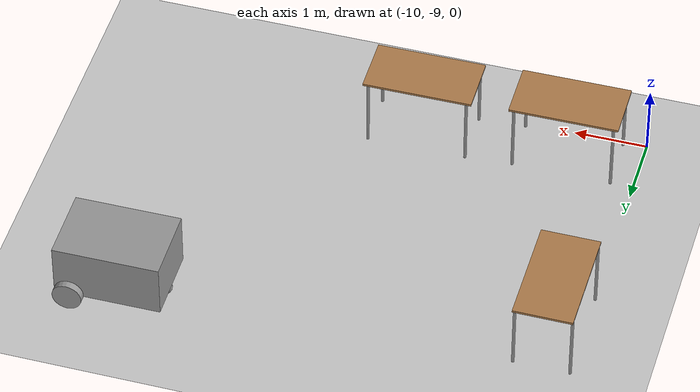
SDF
<sdf version="1.6">
 <world name="default">
  <model name="ground_plane">
   <static>1</static>
   <link name="link">
    <collision name="collision">
     <geometry><plane><normal>0 0 1</normal><size>100 100</size></plane></geometry>
     <surface>
      <contact><collide_bitmask>65535</collide_bitmask></contact>
      <friction><ode><mu>100</mu><mu2>50</mu2></ode></friction>
     </surface>
    </collision>
    <visual name="visual">
     <cast_shadows>0</cast_shadows>
     <geometry><plane><normal>0 0 1</normal><size>100 100</size></plane></geometry>
     <material>
      <script><uri>file://media/materials/scripts/gazebo.material</uri><name>Gazebo/Grey</name></script>
     </material>
    </visual>
   </link>
  </model>
  <model name="robot">
   <link name="link_5">
    <pose>-0.10582 0.004999 0.2875 0 -0 0</pose>
    <inertial>
     <mass>1.09116</mass>
     <inertia>
      <ixx>0.142667</ixx>
      <ixy>0</ixy>
      <ixz>0</ixz>
      <iyy>0.242013</iyy>
      <iyz>0</iyz>
      <izz>0.281205</izz>
     </inertia>
    </inertial>
    <visual name="visual">
     <geometry><box><size>1.44657 1 0.754307</size></box></geometry>
     <material>
      <lighting>1</lighting>
      <script><uri>file://media/materials/scripts/gazebo.material</uri><name>Gazebo/Grey</name></script>
      <shader type="pixel"><normal_map>__default__</normal_map></shader>
      <ambient>0.3 0.3 0.3 1</ambient>
      <diffuse>0.7 0.7 0.7 1</diffuse>
      <specular>0.01 0.01 0.01 1</specular>
      <emissive>0 0 0 1</emissive>
     </material>
    </visual>
    <collision name="collision">
     <geometry><box><size>1.44657 1 0.754307</size></box></geometry>
     <surface>
      <friction>
       <ode><mu>1</mu><mu2>1</mu2><fdir1>0 0 0</fdir1><slip1>0</slip1><slip2>0</slip2></ode>
       <torsional>
        <coefficient>1</coefficient>
        <patch_radius>0</patch_radius>
        <surface_radius>0</surface_radius>
        <use_patch_radius>1</use_patch_radius>
        <ode><slip>0</slip></ode>
       </torsional>
      </friction>
      <bounce><restitution_coefficient>0</restitution_coefficient><threshold>1e+06</threshold></bounce>
      <contact>
       <collide_without_contact>0</collide_without_contact>
       <collide_without_contact_bitmask>1</collide_without_contact_bitmask>
       <collide_bitmask>1</collide_bitmask>
       <ode>
        <soft_cfm>0</soft_cfm>
        <soft_erp>0.2</soft_erp>
        <kp>1e+13</kp>
        <kd>1</kd>
        <max_vel>0.01</max_vel>
        <min_depth>0</min_depth>
       </ode>
       <bullet>
        <split_impulse>1</split_impulse>
        <split_impulse_penetration_threshold>-0.01</split_impulse_penetration_threshold>
        <soft_cfm>0</soft_cfm>
        <soft_erp>0.2</soft_erp>
        <kp>1e+13</kp>
        <kd>1</kd>
       </bullet>
      </contact>
     </surface>
    </collision>
   </link>
   <link name="link_6">
    <pose>0.417463 -0.545019 -0.0625 1.5707 -0 0</pose>
    <inertial>
     <mass>1</mass>
     <inertia><ixx>0.145833</ixx><ixy>0</ixy><ixz>0</ixz><iyy>0.145833</iyy><iyz>0</iyz><izz>0.125</izz></inertia>
    </inertial>
    <visual name="visual">
     <geometry><cylinder><radius>0.2</radius><length>0.1</length></cylinder></geometry>
     <material>
      <lighting>1</lighting>
      <script><uri>file://media/materials/scripts/gazebo.material</uri><name>Gazebo/Grey</name></script>
      <shader type="pixel"><normal_map>__default__</normal_map></shader>
      <ambient>0.3 0.3 0.3 1</ambient>
      <diffuse>0.7 0.7 0.7 1</diffuse>
      <specular>0.01 0.01 0.01 1</specular>
      <emissive>0 0 0 1</emissive>
     </material>
    </visual>
    <collision name="collision">
     <geometry><cylinder><radius>0.2</radius><length>0.1</length></cylinder></geometry>
     <surface>
      <friction>
       <ode><mu>1</mu><mu2>1</mu2><fdir1>0 0 0</fdir1><slip1>0</slip1><slip2>0</slip2></ode>
       <torsional>
        <coefficient>1</coefficient>
        <patch_radius>0</patch_radius>
        <surface_radius>0</surface_radius>
        <use_patch_radius>1</use_patch_radius>
        <ode><slip>0</slip></ode>
       </torsional>
      </friction>
      <bounce><restitution_coefficient>0</restitution_coefficient><threshold>1e+06</threshold></bounce>
      <contact>
       <collide_without_contact>0</collide_without_contact>
       <collide_without_contact_bitmask>1</collide_without_contact_bitmask>
       <collide_bitmask>1</collide_bitmask>
       <ode>
        <soft_cfm>0</soft_cfm>
        <soft_erp>0.2</soft_erp>
        <kp>1e+13</kp>
        <kd>1</kd>
        <max_vel>0.01</max_vel>
        <min_depth>0</min_depth>
       </ode>
       <bullet>
        <split_impulse>1</split_impulse>
        <split_impulse_penetration_threshold>-0.01</split_impulse_penetration_threshold>
        <soft_cfm>0</soft_cfm>
        <soft_erp>0.2</soft_erp>
        <kp>1e+13</kp>
        <kd>1</kd>
       </bullet>
      </contact>
     </surface>
    </collision>
   </link>
   <link name="link_6_clone">
    <pose>0.417463 0.555018 -0.0625 1.5707 -0 0</pose>
    <inertial>
     <mass>1</mass>
     <inertia><ixx>0.145833</ixx><ixy>0</ixy><ixz>0</ixz><iyy>0.145833</iyy><iyz>0</iyz><izz>0.125</izz></inertia>
    </inertial>
    <visual name="visual">
     <geometry><cylinder><radius>0.2</radius><length>0.1</length></cylinder></geometry>
     <material>
      <lighting>1</lighting>
      <script><uri>file://media/materials/scripts/gazebo.material</uri><name>Gazebo/Grey</name></script>
      <shader type="pixel"><normal_map>__default__</normal_map></shader>
      <ambient>0.3 0.3 0.3 1</ambient>
      <diffuse>0.7 0.7 0.7 1</diffuse>
      <specular>0.01 0.01 0.01 1</specular>
      <emissive>0 0 0 1</emissive>
     </material>
    </visual>
    <collision name="collision">
     <geometry><cylinder><radius>0.2</radius><length>0.1</length></cylinder></geometry>
     <surface>
      <friction>
       <ode><mu>1</mu><mu2>1</mu2><fdir1>0 0 0</fdir1><slip1>0</slip1><slip2>0</slip2></ode>
       <torsional>
        <coefficient>1</coefficient>
        <patch_radius>0</patch_radius>
        <surface_radius>0</surface_radius>
        <use_patch_radius>1</use_patch_radius>
        <ode><slip>0</slip></ode>
       </torsional>
      </friction>
      <bounce><restitution_coefficient>0</restitution_coefficient><threshold>1e+06</threshold></bounce>
      <contact>
       <collide_without_contact>0</collide_without_contact>
       <collide_without_contact_bitmask>1</collide_without_contact_bitmask>
       <collide_bitmask>1</collide_bitmask>
       <ode>
        <soft_cfm>0</soft_cfm>
        <soft_erp>0.2</soft_erp>
        <kp>1e+13</kp>
        <kd>1</kd>
        <max_vel>0.01</max_vel>
        <min_depth>0</min_depth>
       </ode>
       <bullet>
        <split_impulse>1</split_impulse>
        <split_impulse_penetration_threshold>-0.01</split_impulse_penetration_threshold>
        <soft_cfm>0</soft_cfm>
        <soft_erp>0.2</soft_erp>
        <kp>1e+13</kp>
        <kd>1</kd>
       </bullet>
      </contact>
     </surface>
    </collision>
   </link>
   <link name="link_7">
    <pose>-0.729103 -0.015001 -0.1625 0 -0 0</pose>
    <inertial>
     <mass>1</mass>
     <inertia><ixx>0.1</ixx><ixy>0</ixy><ixz>0</ixz><iyy>0.1</iyy><iyz>0</iyz><izz>0.1</izz></inertia>
    </inertial>
    <visual name="visual">
     <geometry><sphere><radius>0.1</radius></sphere></geometry>
     <material>
      <lighting>1</lighting>
      <script><uri>file://media/materials/scripts/gazebo.material</uri><name>Gazebo/Grey</name></script>
      <shader type="pixel"><normal_map>__default__</normal_map></shader>
      <ambient>0.3 0.3 0.3 1</ambient>
      <diffuse>0.7 0.7 0.7 1</diffuse>
      <specular>0.01 0.01 0.01 1</specular>
      <emissive>0 0 0 1</emissive>
     </material>
    </visual>
    <collision name="collision">
     <geometry><sphere><radius>0.1</radius></sphere></geometry>
     <surface>
      <friction>
       <ode><mu>1</mu><mu2>1</mu2><fdir1>0 0 0</fdir1><slip1>0</slip1><slip2>0</slip2></ode>
       <torsional>
        <coefficient>1</coefficient>
        <patch_radius>0</patch_radius>
        <surface_radius>0</surface_radius>
        <use_patch_radius>1</use_patch_radius>
        <ode><slip>0</slip></ode>
       </torsional>
      </friction>
      <bounce><restitution_coefficient>0</restitution_coefficient><threshold>1e+06</threshold></bounce>
      <contact>
       <collide_without_contact>0</collide_without_contact>
       <collide_without_contact_bitmask>1</collide_without_contact_bitmask>
       <collide_bitmask>1</collide_bitmask>
       <ode>
        <soft_cfm>0</soft_cfm>
        <soft_erp>0.2</soft_erp>
        <kp>1e+13</kp>
        <kd>1</kd>
        <max_vel>0.01</max_vel>
        <min_depth>0</min_depth>
       </ode>
       <bullet>
        <split_impulse>1</split_impulse>
        <split_impulse_penetration_threshold>-0.01</split_impulse_penetration_threshold>
        <soft_cfm>0</soft_cfm>
        <soft_erp>0.2</soft_erp>
        <kp>1e+13</kp>
        <kd>1</kd>
       </bullet>
      </contact>
     </surface>
    </collision>
   </link>
   <joint name="link_5_JOINT_0" type="ball">
    <parent>link_5</parent>
    <child>link_7</child>
    <physics>
     <ode><limit><cfm>0</cfm><erp>0.2</erp></limit><suspension><cfm>0</cfm><erp>0.2</erp></suspension></ode>
    </physics>
   </joint>
   <joint name="link_5_JOINT_2" type="revolute">
    <parent>link_5</parent>
    <child>link_6</child>
    <axis>
     <xyz>0 0 1</xyz>
     <use_parent_model_frame>0</use_parent_model_frame>
     <limit>
      <lower>-1.79769e+308</lower>
      <upper>1.79769e+308</upper>
      <effort>-1</effort>
      <velocity>-1</velocity>
     </limit>
     <dynamics>
      <spring_reference>0</spring_reference>
      <spring_stiffness>0</spring_stiffness>
      <damping>0</damping>
     </dynamics>
    </axis>
    <physics>
     <ode><limit><cfm>0</cfm><erp>0.2</erp></limit><suspension><cfm>0</cfm><erp>0.2</erp></suspension></ode>
    </physics>
   </joint>
   <joint name="link_5_JOINT_3" type="revolute">
    <parent>link_5</parent>
    <child>link_6_clone</child>
    <axis>
     <xyz>0 0 1</xyz>
     <use_parent_model_frame>0</use_parent_model_frame>
     <limit>
      <lower>-1.79769e+308</lower>
      <upper>1.79769e+308</upper>
      <effort>-1</effort>
      <velocity>-1</velocity>
     </limit>
     <dynamics>
      <spring_reference>0</spring_reference>
      <spring_stiffness>0</spring_stiffness>
      <damping>0</damping>
     </dynamics>
    </axis>
    <physics>
     <ode><limit><cfm>0</cfm><erp>0.2</erp></limit><suspension><cfm>0</cfm><erp>0.2</erp></suspension></ode>
    </physics>
   </joint>
   <static>0</static>
   <pose>-3.83037 -4.59929 0.262503 0 -4e-06 0.006217</pose>
  </model>
  <model name="table">
   <static>1</static>
   <link name="link">
    <collision name="surface">
     <pose>0 0 1 0 -0 0</pose>
     <geometry><box><size>1.5 0.8 0.03</size></box></geometry>
     <surface><friction><ode><mu>0.6</mu><mu2>0.6</mu2></ode></friction></surface>
    </collision>
    <visual name="visual1">
     <pose>0 0 1 0 -0 0</pose>
     <geometry><box><size>1.5 0.8 0.03</size></box></geometry>
     <material>
      <script><uri>file://media/materials/scripts/gazebo.material</uri><name>Gazebo/Wood</name></script>
     </material>
    </visual>
    <collision name="front_left_leg">
     <pose>0.68 0.38 0.5 0 -0 0</pose>
     <geometry><cylinder><radius>0.02</radius><length>1</length></cylinder></geometry>
    </collision>
    <visual name="front_left_leg">
     <pose>0.68 0.38 0.5 0 -0 0</pose>
     <geometry><cylinder><radius>0.02</radius><length>1</length></cylinder></geometry>
     <material>
      <script><uri>file://media/materials/scripts/gazebo.material</uri><name>Gazebo/Grey</name></script>
     </material>
    </visual>
    <collision name="front_right_leg">
     <pose>0.68 -0.38 0.5 0 -0 0</pose>
     <geometry><cylinder><radius>0.02</radius><length>1</length></cylinder></geometry>
    </collision>
    <visual name="front_right_leg">
     <pose>0.68 -0.38 0.5 0 -0 0</pose>
     <geometry><cylinder><radius>0.02</radius><length>1</length></cylinder></geometry>
     <material>
      <script><uri>file://media/materials/scripts/gazebo.material</uri><name>Gazebo/Grey</name></script>
     </material>
    </visual>
    <collision name="back_right_leg">
     <pose>-0.68 -0.38 0.5 0 -0 0</pose>
     <geometry><cylinder><radius>0.02</radius><length>1</length></cylinder></geometry>
    </collision>
    <visual name="back_right_leg">
     <pose>-0.68 -0.38 0.5 0 -0 0</pose>
     <geometry><cylinder><radius>0.02</radius><length>1</length></cylinder></geometry>
     <material>
      <script><uri>file://media/materials/scripts/gazebo.material</uri><name>Gazebo/Grey</name></script>
     </material>
    </visual>
    <collision name="back_left_leg">
     <pose>-0.68 0.38 0.5 0 -0 0</pose>
     <geometry><cylinder><radius>0.02</radius><length>1</length></cylinder></geometry>
    </collision>
    <visual name="back_left_leg">
     <pose>-0.68 0.38 0.5 0 -0 0</pose>
     <geometry><cylinder><radius>0.02</radius><length>1</length></cylinder></geometry>
     <material>
      <script><uri>file://media/materials/scripts/gazebo.material</uri><name>Gazebo/Grey</name></script>
     </material>
    </visual>
   </link>
   <pose>-6.99908 -8.50612 0 0 -0 0.00672</pose>
  </model>
  <model name="table_clone">
   <static>1</static>
   <link name="link">
    <collision name="surface">
     <pose>0 0 1 0 -0 0</pose>
     <geometry><box><size>1.5 0.8 0.03</size></box></geometry>
     <surface><friction><ode><mu>0.6</mu><mu2>0.6</mu2></ode></friction></surface>
    </collision>
    <visual name="visual1">
     <pose>0 0 1 0 -0 0</pose>
     <geometry><box><size>1.5 0.8 0.03</size></box></geometry>
     <material>
      <script><uri>file://media/materials/scripts/gazebo.material</uri><name>Gazebo/Wood</name></script>
     </material>
    </visual>
    <collision name="front_left_leg">
     <pose>0.68 0.38 0.5 0 -0 0</pose>
     <geometry><cylinder><radius>0.02</radius><length>1</length></cylinder></geometry>
    </collision>
    <visual name="front_left_leg">
     <pose>0.68 0.38 0.5 0 -0 0</pose>
     <geometry><cylinder><radius>0.02</radius><length>1</length></cylinder></geometry>
     <material>
      <script><uri>file://media/materials/scripts/gazebo.material</uri><name>Gazebo/Grey</name></script>
     </material>
    </visual>
    <collision name="front_right_leg">
     <pose>0.68 -0.38 0.5 0 -0 0</pose>
     <geometry><cylinder><radius>0.02</radius><length>1</length></cylinder></geometry>
    </collision>
    <visual name="front_right_leg">
     <pose>0.68 -0.38 0.5 0 -0 0</pose>
     <geometry><cylinder><radius>0.02</radius><length>1</length></cylinder></geometry>
     <material>
      <script><uri>file://media/materials/scripts/gazebo.material</uri><name>Gazebo/Grey</name></script>
     </material>
    </visual>
    <collision name="back_right_leg">
     <pose>-0.68 -0.38 0.5 0 -0 0</pose>
     <geometry><cylinder><radius>0.02</radius><length>1</length></cylinder></geometry>
    </collision>
    <visual name="back_right_leg">
     <pose>-0.68 -0.38 0.5 0 -0 0</pose>
     <geometry><cylinder><radius>0.02</radius><length>1</length></cylinder></geometry>
     <material>
      <script><uri>file://media/materials/scripts/gazebo.material</uri><name>Gazebo/Grey</name></script>
     </material>
    </visual>
    <collision name="back_left_leg">
     <pose>-0.68 0.38 0.5 0 -0 0</pose>
     <geometry><cylinder><radius>0.02</radius><length>1</length></cylinder></geometry>
    </collision>
    <visual name="back_left_leg">
     <pose>-0.68 0.38 0.5 0 -0 0</pose>
     <geometry><cylinder><radius>0.02</radius><length>1</length></cylinder></geometry>
     <material>
      <script><uri>file://media/materials/scripts/gazebo.material</uri><name>Gazebo/Grey</name></script>
     </material>
    </visual>
   </link>
   <pose>-9.00293 -8.56346 0 0 -0 0.00672</pose>
  </model>
  <model name="table_clone_2_clone_1">
   <static>1</static>
   <link name="link">
    <collision name="surface">
     <pose>0 0 1 0 -0 0</pose>
     <geometry><box><size>1.5 0.8 0.03</size></box></geometry>
     <surface><friction><ode><mu>0.6</mu><mu2>0.6</mu2></ode></friction></surface>
    </collision>
    <visual name="visual1">
     <pose>0 0 1 0 -0 0</pose>
     <geometry><box><size>1.5 0.8 0.03</size></box></geometry>
     <material>
      <script><uri>file://media/materials/scripts/gazebo.material</uri><name>Gazebo/Wood</name></script>
     </material>
    </visual>
    <collision name="front_left_leg">
     <pose>0.68 0.38 0.5 0 -0 0</pose>
     <geometry><cylinder><radius>0.02</radius><length>1</length></cylinder></geometry>
    </collision>
    <visual name="front_left_leg">
     <pose>0.68 0.38 0.5 0 -0 0</pose>
     <geometry><cylinder><radius>0.02</radius><length>1</length></cylinder></geometry>
     <material>
      <script><uri>file://media/materials/scripts/gazebo.material</uri><name>Gazebo/Grey</name></script>
     </material>
    </visual>
    <collision name="front_right_leg">
     <pose>0.68 -0.38 0.5 0 -0 0</pose>
     <geometry><cylinder><radius>0.02</radius><length>1</length></cylinder></geometry>
    </collision>
    <visual name="front_right_leg">
     <pose>0.68 -0.38 0.5 0 -0 0</pose>
     <geometry><cylinder><radius>0.02</radius><length>1</length></cylinder></geometry>
     <material>
      <script><uri>file://media/materials/scripts/gazebo.material</uri><name>Gazebo/Grey</name></script>
     </material>
    </visual>
    <collision name="back_right_leg">
     <pose>-0.68 -0.38 0.5 0 -0 0</pose>
     <geometry><cylinder><radius>0.02</radius><length>1</length></cylinder></geometry>
    </collision>
    <visual name="back_right_leg">
     <pose>-0.68 -0.38 0.5 0 -0 0</pose>
     <geometry><cylinder><radius>0.02</radius><length>1</length></cylinder></geometry>
     <material>
      <script><uri>file://media/materials/scripts/gazebo.material</uri><name>Gazebo/Grey</name></script>
     </material>
    </visual>
    <collision name="back_left_leg">
     <pose>-0.68 0.38 0.5 0 -0 0</pose>
     <geometry><cylinder><radius>0.02</radius><length>1</length></cylinder></geometry>
    </collision>
    <visual name="back_left_leg">
     <pose>-0.68 0.38 0.5 0 -0 0</pose>
     <geometry><cylinder><radius>0.02</radius><length>1</length></cylinder></geometry>
     <material>
      <script><uri>file://media/materials/scripts/gazebo.material</uri><name>Gazebo/Grey</name></script>
     </material>
    </visual>
   </link>
   <pose>-9.62073 -5.35782 0 0 -0 1.56921</pose>
  </model>
 </world>
</sdf>
